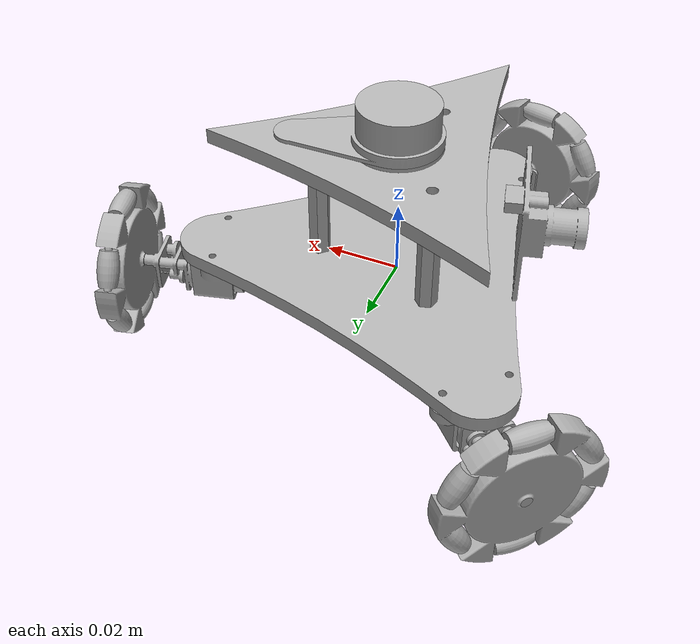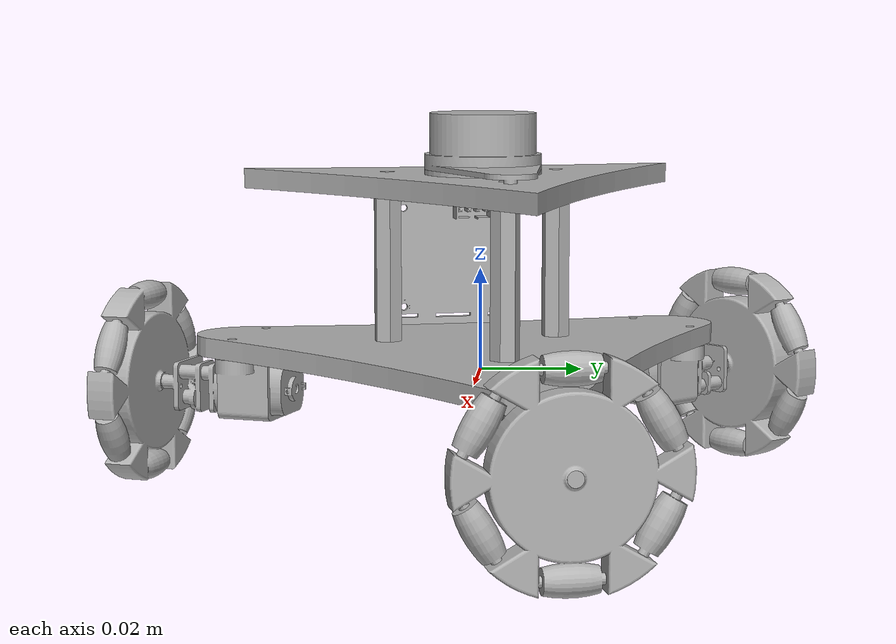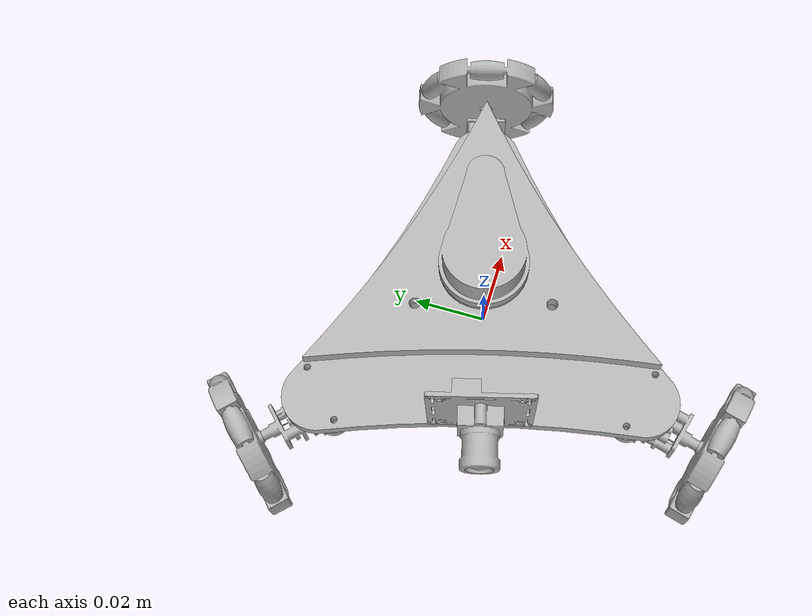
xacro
<?xml version="1.0" ?>
<robot name="duke_bot" xmlns:xacro="http://www.ros.org/wiki/xacro">

<xacro:include filename="$(find duke_bot_description)/urdf/duke_bot.gazebo" />

<link name ="footprint_link" />
<joint name="footprint_joint" type="fixed">
  <origin xyz="0.0 0.0 0.0" rpy="0 0 1.047" />
  <parent link="footprint_link"/>
  <child link="base_link"/>
</joint>

<link name="base_link">
  <inertial>
    <origin xyz="9.54855897193596e-05 0.000323474174875853 0.0027826964495654915" rpy="0 0 0"/>
    <mass value="0.024022839982053068"/>
    <inertia ixx="1.3e-05" iyy="1.3e-05" izz="2.7e-05" ixy="-1e-06" iyz="0.0" ixz="0.0"/>
  </inertial>
  <visual>
    <origin xyz="0 0 0" rpy="0 0 0"/>
    <geometry>
      <mesh filename="file://$(find duke_bot_description)/meshes/base_link.stl" scale="0.001 0.001 0.001"/>
    </geometry>
    <material name="silver"/>
  </visual>
  <collision>
    <origin xyz="0 0 0" rpy="0 0 0"/>
    <geometry>
      <mesh filename="file://$(find duke_bot_description)/meshes/base_link.stl" scale="0.001 0.001 0.001"/>
    </geometry>
  </collision>
</link>

<link name="top_surface_holder_2_1">
  <inertial>
    <origin xyz="-4.097049409630682e-07 2.030571672898343e-07 0.014999696449565478" rpy="0 0 0"/>
    <mass value="0.0034909997200175324"/>
    <inertia ixx="0.0" iyy="0.0" izz="0.0" ixy="0.0" iyz="0.0" ixz="0.0"/>
  </inertial>
  <visual>
    <origin xyz="0.018618 0.005615 -0.004783" rpy="0 0 0"/>
    <geometry>
      <mesh filename="file://$(find duke_bot_description)/meshes/top_surface_holder_2_1.stl" scale="0.001 0.001 0.001"/>
    </geometry>
    <material name="silver"/>
  </visual>
  <collision>
    <origin xyz="0.018618 0.005615 -0.004783" rpy="0 0 0"/>
    <geometry>
      <mesh filename="file://$(find duke_bot_description)/meshes/top_surface_holder_2_1.stl" scale="0.001 0.001 0.001"/>
    </geometry>
  </collision>
</link>

<link name="top_surface_holder_1_1">
  <inertial>
    <origin xyz="-1.8370984154747472e-07 -2.2943900293385944e-07 0.0149996964495655" rpy="0 0 0"/>
    <mass value="0.0034909997200175324"/>
    <inertia ixx="0.0" iyy="0.0" izz="0.0" ixy="-0.0" iyz="0.0" ixz="0.0"/>
  </inertial>
  <visual>
    <origin xyz="-0.014941 0.014204 -0.004783" rpy="0 0 0"/>
    <geometry>
      <mesh filename="file://$(find duke_bot_description)/meshes/top_surface_holder_1_1.stl" scale="0.001 0.001 0.001"/>
    </geometry>
    <material name="silver"/>
  </visual>
  <collision>
    <origin xyz="-0.014941 0.014204 -0.004783" rpy="0 0 0"/>
    <geometry>
      <mesh filename="file://$(find duke_bot_description)/meshes/top_surface_holder_1_1.stl" scale="0.001 0.001 0.001"/>
    </geometry>
  </collision>
</link>

<link name="top_surface_holder_3_1">
  <inertial>
    <origin xyz="-1.2996143577276298e-07 -3.709479228404533e-07 0.014999696449565489" rpy="0 0 0"/>
    <mass value="0.0034909997200175324"/>
    <inertia ixx="0.0" iyy="0.0" izz="0.0" ixy="0.0" iyz="0.0" ixz="0.0"/>
  </inertial>
  <visual>
    <origin xyz="-0.0056 -0.019154 -0.004783" rpy="0 0 0"/>
    <geometry>
      <mesh filename="file://$(find duke_bot_description)/meshes/top_surface_holder_3_1.stl" scale="0.001 0.001 0.001"/>
    </geometry>
    <material name="silver"/>
  </visual>
  <collision>
    <origin xyz="-0.0056 -0.019154 -0.004783" rpy="0 0 0"/>
    <geometry>
      <mesh filename="file://$(find duke_bot_description)/meshes/top_surface_holder_3_1.stl" scale="0.001 0.001 0.001"/>
    </geometry>
  </collision>
</link>

<link name="top_surface_1">
  <inertial>
    <origin xyz="-0.005359879159044118 -0.018976560817436677 0.002015328801815139" rpy="0 0 0"/>
    <mass value="0.011716397428823319"/>
    <inertia ixx="3e-06" iyy="3e-06" izz="7e-06" ixy="-0.0" iyz="0.0" ixz="-0.0"/>
  </inertial>
  <visual>
    <origin xyz="-0.0056 -0.019154 -0.034783" rpy="0 0 0"/>
    <geometry>
      <mesh filename="file://$(find duke_bot_description)/meshes/top_surface_1.stl" scale="0.001 0.001 0.001"/>
    </geometry>
    <material name="silver"/>
  </visual>
  <collision>
    <origin xyz="-0.0056 -0.019154 -0.034783" rpy="0 0 0"/>
    <geometry>
      <mesh filename="file://$(find duke_bot_description)/meshes/top_surface_1.stl" scale="0.001 0.001 0.001"/>
    </geometry>
  </collision>
</link>

<link name="lidar_1">
  <inertial>
    <origin xyz="0.0008383738246992993 -0.0008384140600943525 0.004987597496776942" rpy="0 0 0"/>
    <mass value="0.0045472047500446046"/>
    <inertia ixx="0.0" iyy="0.0" izz="0.0" ixy="0.0" iyz="-0.0" ixz="0.0"/>
  </inertial>
  <visual>
    <origin xyz="-0.000641 0.000222 -0.039783" rpy="0 0 0"/>
    <geometry>
      <mesh filename="file://$(find duke_bot_description)/meshes/lidar_1.stl" scale="0.001 0.001 0.001"/>
    </geometry>
    <material name="silver"/>
  </visual>
  <collision>
    <origin xyz="-0.000641 0.000222 -0.039783" rpy="0 0 0"/>
    <geometry>
      <mesh filename="file://$(find duke_bot_description)/meshes/lidar_1.stl" scale="0.001 0.001 0.001"/>
    </geometry>
  </collision>
</link>

<link name="motor_holder_1_1">
  <inertial>
    <origin xyz="-0.008486420552512978 0.0010897278578822153 -0.006738007055746277" rpy="0 0 0"/>
    <mass value="0.0005943127590983897"/>
    <inertia ixx="0.0" iyy="0.0" izz="0.0" ixy="0.0" iyz="-0.0" ixz="-0.0"/>
  </inertial>
  <visual>
    <origin xyz="-0.022406 -0.046059 -0.000783" rpy="0 0 0"/>
    <geometry>
      <mesh filename="file://$(find duke_bot_description)/meshes/motor_holder_1_1.stl" scale="0.001 0.001 0.001"/>
    </geometry>
    <material name="silver"/>
  </visual>
  <collision>
    <origin xyz="-0.022406 -0.046059 -0.000783" rpy="0 0 0"/>
    <geometry>
      <mesh filename="file://$(find duke_bot_description)/meshes/motor_holder_1_1.stl" scale="0.001 0.001 0.001"/>
    </geometry>
  </collision>
</link>

<link name="motor_holder_2_1">
  <inertial>
    <origin xyz="0.003299502174232416 -0.007893715999442892 -0.006738007055746277" rpy="0 0 0"/>
    <mass value="0.0005943127590983897"/>
    <inertia ixx="0.0" iyy="0.0" izz="0.0" ixy="0.0" iyz="0.0" ixz="0.0"/>
  </inertial>
  <visual>
    <origin xyz="0.050213 0.005657 -0.000783" rpy="0 0 0"/>
    <geometry>
      <mesh filename="file://$(find duke_bot_description)/meshes/motor_holder_2_1.stl" scale="0.001 0.001 0.001"/>
    </geometry>
    <material name="silver"/>
  </visual>
  <collision>
    <origin xyz="0.050213 0.005657 -0.000783" rpy="0 0 0"/>
    <geometry>
      <mesh filename="file://$(find duke_bot_description)/meshes/motor_holder_2_1.stl" scale="0.001 0.001 0.001"/>
    </geometry>
  </collision>
</link>

<link name="motor_holder_3_1">
  <inertial>
    <origin xyz="-0.005186966469112084 -0.006804034087772862 -0.006738007055746281" rpy="0 0 0"/>
    <mass value="0.0005943127590983897"/>
    <inertia ixx="0.0" iyy="0.0" izz="0.0" ixy="-0.0" iyz="-0.0" ixz="0.0"/>
  </inertial>
  <visual>
    <origin xyz="-0.040232 0.027894 -0.000783" rpy="0 0 0"/>
    <geometry>
      <mesh filename="file://$(find duke_bot_description)/meshes/motor_holder_3_1.stl" scale="0.001 0.001 0.001"/>
    </geometry>
    <material name="silver"/>
  </visual>
  <collision>
    <origin xyz="-0.040232 0.027894 -0.000783" rpy="0 0 0"/>
    <geometry>
      <mesh filename="file://$(find duke_bot_description)/meshes/motor_holder_3_1.stl" scale="0.001 0.001 0.001"/>
    </geometry>
  </collision>
</link>

<link name="n20_motor_1_1">
  <inertial>
    <origin xyz="0.0007687298639330025 0.0029638635268054714 0.004980668155199606" rpy="0 0 0"/>
    <mass value="0.017834183296614247"/>
    <inertia ixx="1e-06" iyy="0.0" izz="1e-06" ixy="-0.0" iyz="0.0" ixz="0.0"/>
  </inertial>
  <visual>
    <origin xyz="-0.013827 -0.046805 0.011217" rpy="0 0 0"/>
    <geometry>
      <mesh filename="file://$(find duke_bot_description)/meshes/n20_motor_1_1.stl" scale="0.001 0.001 0.001"/>
    </geometry>
    <material name="silver"/>
  </visual>
  <collision>
    <origin xyz="-0.013827 -0.046805 0.011217" rpy="0 0 0"/>
    <geometry>
      <mesh filename="file://$(find duke_bot_description)/meshes/n20_motor_1_1.stl" scale="0.001 0.001 0.001"/>
    </geometry>
  </collision>
</link>

<link name="n20_motor_2_1">
  <inertial>
    <origin xyz="-0.0029516770846398296 -0.000816220396482872 0.0049806681551996124" rpy="0 0 0"/>
    <mass value="0.017834183296614247"/>
    <inertia ixx="0.0" iyy="1e-06" izz="1e-06" ixy="-0.0" iyz="0.0" ixz="-0.0"/>
  </inertial>
  <visual>
    <origin xyz="0.046569 0.013459 0.011217" rpy="0 0 0"/>
    <geometry>
      <mesh filename="file://$(find duke_bot_description)/meshes/n20_motor_2_1.stl" scale="0.001 0.001 0.001"/>
    </geometry>
    <material name="silver"/>
  </visual>
  <collision>
    <origin xyz="0.046569 0.013459 0.011217" rpy="0 0 0"/>
    <geometry>
      <mesh filename="file://$(find duke_bot_description)/meshes/n20_motor_2_1.stl" scale="0.001 0.001 0.001"/>
    </geometry>
  </collision>
</link>

<link name="n20_motor_3_1">
  <inertial>
    <origin xyz="0.002147526407343482 -0.0021829245347714382 0.005018724743931371" rpy="0 0 0"/>
    <mass value="0.017834183296614247"/>
    <inertia ixx="1e-06" iyy="1e-06" izz="1e-06" ixy="0.0" iyz="-0.0" ixz="-0.0"/>
  </inertial>
  <visual>
    <origin xyz="-0.035297 0.03495 0.011217" rpy="0 0 0"/>
    <geometry>
      <mesh filename="file://$(find duke_bot_description)/meshes/n20_motor_3_1.stl" scale="0.001 0.001 0.001"/>
    </geometry>
    <material name="silver"/>
  </visual>
  <collision>
    <origin xyz="-0.035297 0.03495 0.011217" rpy="0 0 0"/>
    <geometry>
      <mesh filename="file://$(find duke_bot_description)/meshes/n20_motor_3_1.stl" scale="0.001 0.001 0.001"/>
    </geometry>
  </collision>
</link>

<link name="omni_wheel_1_1">
  <inertial>
    <origin xyz="-0.0009107726794966298 -0.0033974504948327405 -3.027244888445524e-07" rpy="0 0 0"/>
    <mass value="0.007322790160921375"/>
    <inertia ixx="1e-06" iyy="1e-06" izz="1e-06" ixy="0.0" iyz="0.0" ixz="-0.0"/>
  </inertial>
  <visual>
    <origin xyz="-0.02123 -0.07443 0.006217" rpy="0 0 0"/>
    <geometry>
      <mesh filename="file://$(find duke_bot_description)/meshes/omni_wheel_1_1.stl" scale="0.001 0.001 0.001"/>
    </geometry>
    <material name="silver"/>
  </visual>
  <collision>
    <origin xyz="-0.02123 -0.07443 0.006217" rpy="0 0 0"/>
    <geometry>
      <mesh filename="file://$(find duke_bot_description)/meshes/omni_wheel_1_1.stl" scale="0.001 0.001 0.001"/>
    </geometry>
  </collision>
</link>

<link name="omni_wheel_2_1">
  <inertial>
    <origin xyz="0.0033976805510785163 0.0009106360374820689 -3.043763801635971e-07" rpy="0 0 0"/>
    <mass value="0.007322790160921375"/>
    <inertia ixx="1e-06" iyy="1e-06" izz="1e-06" ixy="0.0" iyz="-0.0" ixz="0.0"/>
  </inertial>
  <visual>
    <origin xyz="0.074195 0.020861 0.006217" rpy="0 0 0"/>
    <geometry>
      <mesh filename="file://$(find duke_bot_description)/meshes/omni_wheel_2_1.stl" scale="0.001 0.001 0.001"/>
    </geometry>
    <material name="silver"/>
  </visual>
  <collision>
    <origin xyz="0.074195 0.020861 0.006217" rpy="0 0 0"/>
    <geometry>
      <mesh filename="file://$(find duke_bot_description)/meshes/omni_wheel_2_1.stl" scale="0.001 0.001 0.001"/>
    </geometry>
  </collision>
</link>

<link name="omni_wheel_3_1">
  <inertial>
    <origin xyz="-0.002486936407590054 0.0024869319581574886 -3.043763801679339e-07" rpy="0 0 0"/>
    <mass value="0.007322790160921375"/>
    <inertia ixx="1e-06" iyy="1e-06" izz="1e-06" ixy="-0.0" iyz="0.0" ixz="0.0"/>
  </inertial>
  <visual>
    <origin xyz="-0.05552 0.055173 0.006217" rpy="0 0 0"/>
    <geometry>
      <mesh filename="file://$(find duke_bot_description)/meshes/omni_wheel_3_1.stl" scale="0.001 0.001 0.001"/>
    </geometry>
    <material name="silver"/>
  </visual>
  <collision>
    <origin xyz="-0.05552 0.055173 0.006217" rpy="0 0 0"/>
    <geometry>
      <mesh filename="file://$(find duke_bot_description)/meshes/omni_wheel_3_1.stl" scale="0.001 0.001 0.001"/>
    </geometry>
  </collision>
</link>

<link name="ov_camera_1">
  <inertial>
    <origin xyz="-0.0022579398219568503 0.002951945188588923 0.01554416229830156" rpy="0 0 0"/>
    <mass value="0.0027092205032529094"/>
    <inertia ixx="0.0" iyy="0.0" izz="0.0" ixy="0.0" iyz="0.0" ixz="-0.0"/>
  </inertial>
  <visual>
    <origin xyz="0.022096 -0.022515 -0.004783" rpy="0 0 0"/>
    <geometry>
      <mesh filename="file://$(find duke_bot_description)/meshes/ov_camera_1.stl" scale="0.001 0.001 0.001"/>
    </geometry>
    <material name="silver"/>
  </visual>
  <collision>
    <origin xyz="0.022096 -0.022515 -0.004783" rpy="0 0 0"/>
    <geometry>
      <mesh filename="file://$(find duke_bot_description)/meshes/ov_camera_1.stl" scale="0.001 0.001 0.001"/>
    </geometry>
  </collision>
</link>

<link name="fake_camera_1">
  <inertial>
    <origin xyz="-0.0022579398219568503 0.002951945188588923 0.01554416229830156" rpy="0 0 0"/>
    <mass value="0.0027092205032529094"/>
    <inertia ixx="0.0" iyy="0.0" izz="0.0" ixy="0.0" iyz="0.0" ixz="-0.0"/>
  </inertial>
</link>

<joint name="top_surface_holder1_fix" type="fixed">
  <origin xyz="-0.018618 -0.005615 0.004783" rpy="0 0 0"/>
  <parent link="base_link"/>
  <child link="top_surface_holder_2_1"/>
</joint>

<joint name="top_surface_holder2_fix" type="fixed">
  <origin xyz="0.014941 -0.014204 0.004783" rpy="0 0 0"/>
  <parent link="base_link"/>
  <child link="top_surface_holder_1_1"/>
</joint>

<joint name="top_surface_holder3_fix" type="fixed">
  <origin xyz="0.0056 0.019154 0.004783" rpy="0 0 0"/>
  <parent link="base_link"/>
  <child link="top_surface_holder_3_1"/>
</joint>

<joint name="top_surface_fix" type="fixed">
  <origin xyz="0.0 0.0 0.03" rpy="0 0 0"/>
  <parent link="top_surface_holder_3_1"/>
  <child link="top_surface_1"/>
</joint>

<joint name="lidar_fix" type="fixed">
  <origin xyz="-0.004959 -0.019376 0.005" rpy="0 0 0"/>
  <parent link="top_surface_1"/>
  <child link="lidar_1"/>
</joint>

<joint name="motor1_holder_fix" type="fixed">
  <origin xyz="0.022406 0.046059 0.000783" rpy="0 0 0"/>
  <parent link="base_link"/>
  <child link="motor_holder_1_1"/>
</joint>

<joint name="motor2_holder_fix" type="fixed">
  <origin xyz="-0.050213 -0.005657 0.000783" rpy="0 0 0"/>
  <parent link="base_link"/>
  <child link="motor_holder_2_1"/>
</joint>

<joint name="motor3_holder_fix" type="fixed">
  <origin xyz="0.040232 -0.027894 0.000783" rpy="0 0 0"/>
  <parent link="base_link"/>
  <child link="motor_holder_3_1"/>
</joint>

<joint name="n20_motor1_fix" type="fixed">
  <origin xyz="-0.008579 0.000746 -0.012" rpy="0 0 0"/>
  <parent link="motor_holder_1_1"/>
  <child link="n20_motor_1_1"/>
</joint>

<joint name="n20_motor2_fix" type="fixed">
  <origin xyz="0.003644 -0.007802 -0.012" rpy="0 0 0"/>
  <parent link="motor_holder_2_1"/>
  <child link="n20_motor_2_1"/>
</joint>

<joint name="n20_motor3_fix" type="fixed">
  <origin xyz="-0.004935 -0.007056 -0.012" rpy="0 0 0"/>
  <parent link="motor_holder_3_1"/>
  <child link="n20_motor_3_1"/>
</joint>

<joint name="wheel1_joint" type="continuous">
  <origin xyz="0.007403 0.027625 0.005" rpy="0 0 0"/>
  <parent link="n20_motor_1_1"/>
  <child link="omni_wheel_1_1"/>
  <axis xyz="0.258819 0.965926 -0.0"/>
  <limit effort="5" velocity="5" />
</joint>

<joint name="wheel2_joint" type="continuous">
  <origin xyz="-0.027626 -0.007402 0.005" rpy="0 0 0"/>
  <parent link="n20_motor_2_1"/>
  <child link="omni_wheel_2_1"/>
  <axis xyz="-0.965926 -0.258819 -0.0"/>
  <limit effort="5" velocity="5" />
</joint>

<joint name="wheel3_joint" type="continuous">
  <origin xyz="0.020223 -0.020223 0.005" rpy="0 0 0"/>
  <parent link="n20_motor_3_1"/>
  <child link="omni_wheel_3_1"/>
  <axis xyz="0.707107 -0.707107 0.0"/>
  <limit effort="5" velocity="5" />
</joint>

<joint name="camera_fix" type="fixed">
  <origin xyz="-0.022096 0.022515 0.004783" rpy="0 0 0"/>
  <parent link="base_link"/>
  <child link="ov_camera_1"/>
</joint>

<joint name="fake_camera_fix" type="fixed">
  <origin xyz="-0.022096 0.025 0.004783" rpy="0 0 2.36"/>
  <parent link="base_link"/>
  <child link="fake_camera_1"/>
</joint>

</robot>

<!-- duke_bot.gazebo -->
<robot name="duke_bot" xmlns:xacro="http://www.ros.org/wiki/xacro" >

<xacro:property name="red_color" value="Gazebo/Red" />
<xacro:property name="body_color" value="Gazebo/Blue" />
<xacro:property name="green_color" value="Gazebo/Green" />
<xacro:property name="silver_color" value="Gazebo/Silver" />
<xacro:property name="orange_color" value="Gazebo/Orange" />
<xacro:property name="yellow_color" value="Gazebo/Yellow" />

<gazebo>
  <plugin name="ow1_force" filename="libgazebo_ros_force.so">
    <ros>
      <remapping>gazebo_ros_force:=ow1_force</remapping>
    </ros>
    <link_name>omni_wheel_1_1</link_name>
    <force_frame>link</force_frame>
  </plugin>
</gazebo>

<gazebo>
  <plugin name="ow2_force" filename="libgazebo_ros_force.so">
    <ros>
      <remapping>gazebo_ros_force:=ow2_force</remapping>
    </ros>
    <link_name>omni_wheel_2_1</link_name>
    <force_frame>link</force_frame>
  </plugin>
</gazebo>

<gazebo>
  <plugin name="ow3_force" filename="libgazebo_ros_force.so">
    <ros>
      <remapping>gazebo_ros_force:=ow3_force</remapping>
    </ros>
    <link_name>omni_wheel_3_1</link_name>
    <force_frame>link</force_frame>
  </plugin>
</gazebo>

<gazebo>
  <plugin name="object_controller_1" filename="libgazebo_ros_planar_move.so">
      <ros>
          <remapping>cmd_vel:=cmd_vel</remapping>
          <remapping>odom:=odom_pose</remapping>
        </ros>
        <robotBaseFrame>footprint_link</robotBaseFrame>
  </plugin>
</gazebo>

<gazebo reference="base_link">
    <sensor name="br_imu" type="imu">
        <always_on>true</always_on>
        <update_rate>100</update_rate>
        <imu>
          <angular_velocity>
            <x>
              <noise type="gaussian">
                <mean>0.0</mean>
                <stddev>2e-4</stddev>
              </noise>
            </x>
            <y>
              <noise type="gaussian">
                <mean>0.0</mean>
                <stddev>2e-4</stddev>
              </noise>
            </y>
            <z>
              <noise type="gaussian">
                <mean>0.0</mean>
                <stddev>2e-4</stddev>
              </noise>
            </z>
          </angular_velocity>
          <linear_acceleration>
            <x>
              <noise type="gaussian">
                <mean>0.0</mean>
                <stddev>1.7e-2</stddev>
              </noise>
            </x>
            <y>
              <noise type="gaussian">
                <mean>0.0</mean>
                <stddev>1.7e-2</stddev>
              </noise>
            </y>
            <z>
              <noise type="gaussian">
                <mean>0.0</mean>
                <stddev>1.7e-2</stddev>
              </noise>
            </z>
          </linear_acceleration>
        </imu>
        <plugin name="bytes_imu" filename="libgazebo_ros_imu_sensor.so">
            <ros>
                <namespace>imu</namespace>
                <remapping>~/out:=data</remapping>
            </ros>
            <initial_orientation_as_reference>true</initial_orientation_as_reference>
        </plugin>
    </sensor>
</gazebo>

<gazebo reference="lidar_1">
    <sensor name="rplidar_a3" type="ray">
        <always_on>true</always_on>
        <visualize>false</visualize>
        <pose>0 0 0 0 0 0</pose>
        <update_rate>100</update_rate>
        <ray>
          <scan>
            <horizontal>
              <samples>667</samples>
              <resolution>0.54</resolution>
              <min_angle>0.000000</min_angle>
              <max_angle>6.280000</max_angle>
            </horizontal>
          </scan>
          <range>
            <min>0.120000</min>
            <max>20</max>
            <resolution>0.54</resolution>
          </range>
          <noise>
            <type>gaussian</type>
            <mean>0.0</mean>
            <stddev>0.01</stddev>
          </noise>
        </ray>
        <plugin name="bytes_laserscan" filename="libgazebo_ros_ray_sensor.so">
          <ros>
              <namespace>lidar</namespace>
            <remapping>~/out:=scan</remapping>
          </ros>
          <output_type>sensor_msgs/LaserScan</output_type>
          <frame_name>head</frame_name>
        </plugin>
    </sensor>
</gazebo>

<gazebo reference="fake_camera_1">
  <sensor type="camera" name="ov_camera">
    <update_rate>60</update_rate>
    <visualize>false</visualize>
    <camera name="head">
      <horizontal_fov>1.3962634</horizontal_fov>
      <image>
        <width>640</width>
        <height>480</height>
        <format>R8G8B8</format>
      </image>
      <clip>
        <near>0.02</near>
        <far>100</far>
      </clip>
      <noise>
        <type>gaussian</type>
        <mean>0.0</mean>
        <stddev>0.007</stddev>
      </noise>
    </camera>
    <plugin name="camera_controller" filename="libgazebo_ros_camera.so">
      <ros>
        <remapping>image_raw:=image</remapping>
      </ros>
    </plugin>
  </sensor>
</gazebo>

<gazebo reference="base_link">
  <material>${body_color}</material>
  <mu1>0.2</mu1>
  <mu2>0.2</mu2>
  <self_collide>true</self_collide>
  <gravity>true</gravity>
</gazebo>

<gazebo reference="top_surface_holder_2_1">
  <material>${yellow_color}</material>
  <mu1>0.2</mu1>
  <mu2>0.2</mu2>
  <self_collide>true</self_collide>
</gazebo>

<gazebo reference="top_surface_holder_1_1">
  <material>${yellow_color}</material>
  <mu1>0.2</mu1>
  <mu2>0.2</mu2>
  <self_collide>true</self_collide>
</gazebo>

<gazebo reference="top_surface_holder_3_1">
  <material>${yellow_color}</material>
  <mu1>0.2</mu1>
  <mu2>0.2</mu2>
  <self_collide>true</self_collide>
</gazebo>

<gazebo reference="top_surface_1">
  <material>${orange_color}</material>
  <mu1>0.2</mu1>
  <mu2>0.2</mu2>
  <self_collide>true</self_collide>
</gazebo>

<gazebo reference="lidar_1">
  <material>${body_color}</material>
  <mu1>0.2</mu1>
  <mu2>0.2</mu2>
  <self_collide>true</self_collide>
</gazebo>

<gazebo reference="motor_holder_1_1">
  <material>${orange_color}</material>
  <mu1>0.2</mu1>
  <mu2>0.2</mu2>
  <self_collide>true</self_collide>
</gazebo>

<gazebo reference="motor_holder_2_1">
  <material>${orange_color}</material>
  <mu1>0.2</mu1>
  <mu2>0.2</mu2>
  <self_collide>true</self_collide>
</gazebo>

<gazebo reference="motor_holder_3_1">
  <material>${orange_color}</material>
  <mu1>0.2</mu1>
  <mu2>0.2</mu2>
  <self_collide>true</self_collide>
</gazebo>

<gazebo reference="n20_motor_1_1">
  <material>${silver_color}</material>
  <mu1>0.2</mu1>
  <mu2>0.2</mu2>
  <self_collide>true</self_collide>
</gazebo>

<gazebo reference="n20_motor_2_1">
  <material>${silver_color}</material>
  <mu1>0.2</mu1>
  <mu2>0.2</mu2>
  <self_collide>true</self_collide>
</gazebo>

<gazebo reference="n20_motor_3_1">
  <material>${silver_color}</material>
  <mu1>0.2</mu1>
  <mu2>0.2</mu2>
  <self_collide>true</self_collide>
</gazebo>

<gazebo reference="omni_wheel_1_1">
  <material>${red_color}</material>
  <mu1>0.2</mu1>
  <mu2>0.2</mu2>
  <self_collide>true</self_collide>
</gazebo>

<gazebo reference="omni_wheel_2_1">
  <material>${red_color}</material>
  <mu1>0.2</mu1>
  <mu2>0.2</mu2>
  <self_collide>true</self_collide>
</gazebo>

<gazebo reference="omni_wheel_3_1">
  <material>${red_color}</material>
  <mu1>0.2</mu1>
  <mu2>0.2</mu2>
  <self_collide>true</self_collide>
</gazebo>

<gazebo reference="ov_camera_1">
  <material>${green_color}</material>
  <mu1>0.2</mu1>
  <mu2>0.2</mu2>
  <self_collide>true</self_collide>
</gazebo>

<material name="silver">
  <color rgba="0.700 0.700 0.700 1.000"/>
</material>

</robot>
